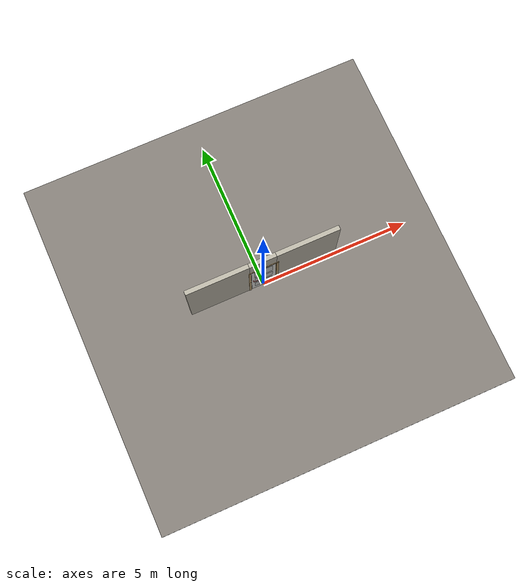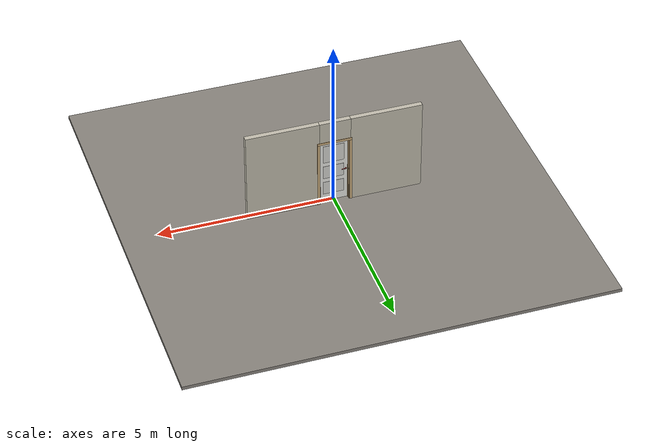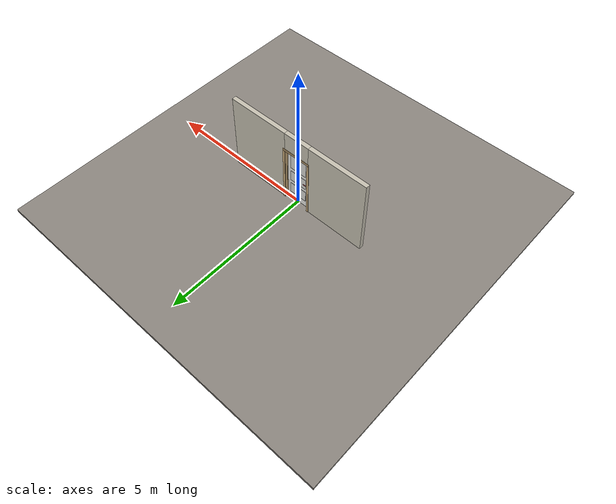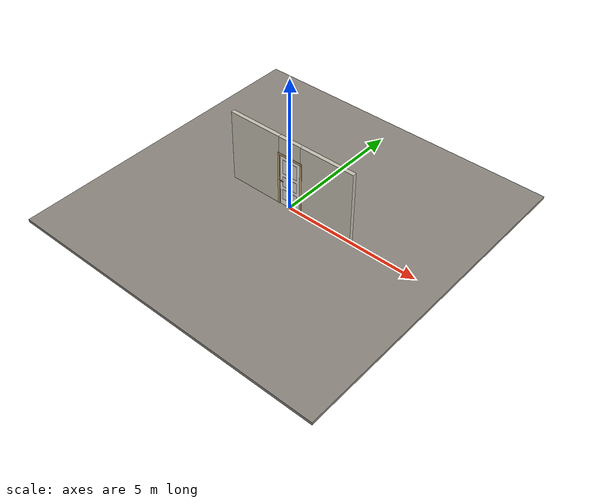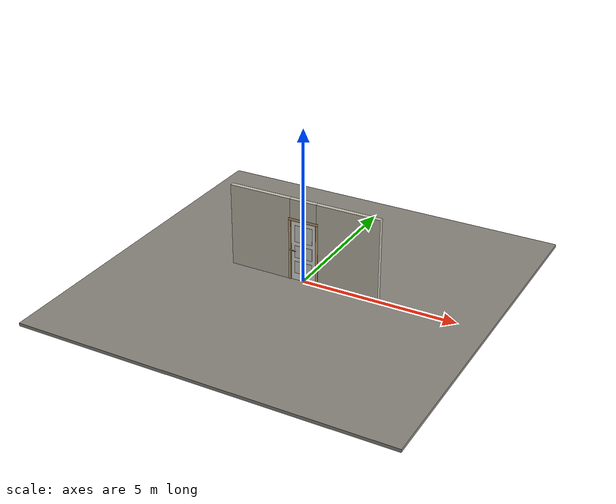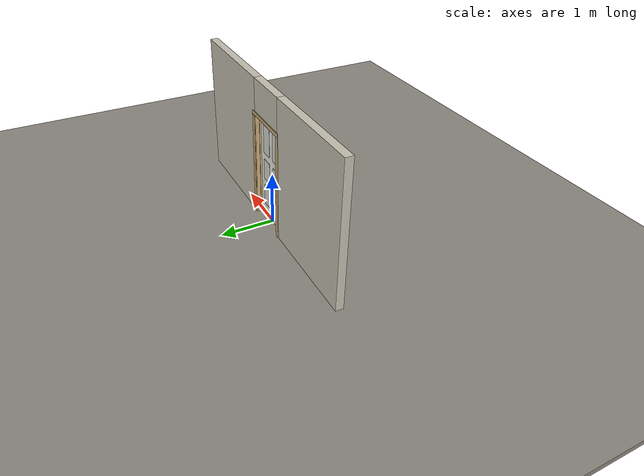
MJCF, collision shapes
<?xml version="1.0" ?>
<mujoco model="db0317_swing_single_full">
  <compiler angle="radian" meshdir="../../hardware" texturedir="../../textures" autolimits="true" inertiafromgeom="false"/>
  <option timestep="0.002" integrator="implicitfast" cone="elliptic" impratio="10" noslip_iterations="3">
    <flag multiccd="enable"/>
  </option>
  <size memory="16M"/>
  <default>
    <geom condim="4" solref="0.005 1" solimp="0.95 0.99 0.001"/>
    <joint solreflimit="0.005 1" solimplimit="0.95 0.99 0.001"/>
    <tendon solreflimit="0.005 1"/>
    <equality solref="0.002 1"/>
  </default>
  <visual>
    <headlight ambient="0.4 0.4 0.4" diffuse="0.7 0.7 0.7" specular="0.2 0.2 0.2"/>
    <quality shadowsize="4096"/>
    <map znear="0.01" zfar="60"/>
  </visual>
  <asset>
    <mesh name="hinge_c20a5829de" file="hinge_c20a5829de.obj"/>
    <mesh name="hinge_jamb_20499e6581" file="hinge_jamb_20499e6581.obj"/>
    <mesh name="lever_9f02b544cf" file="lever_9f02b544cf.obj"/>
    <material name="mat_floor" rgba="0.55 0.53 0.5 1" specular="0.2" shininess="0.15" reflectance="0"/>
    <material name="mat_wall" rgba="0.78 0.76 0.7 1" specular="0.2" shininess="0.1" reflectance="0"/>
    <material name="mat_hinge" rgba="0.55 0.56 0.58 1" specular="0.8" shininess="0.55" reflectance="0.4"/>
    <material name="mat_leaf" rgba="0.93 0.93 0.91 1" specular="0.2" shininess="0.59" reflectance="0"/>
    <material name="mat_leaf_panel" rgba="0.856 0.856 0.837 1" specular="0.2" shininess="0.59" reflectance="0"/>
    <material name="mat_op_brass_antique" rgba="0.55 0.42 0.22 1" specular="0.74" shininess="0.45" reflectance="0.36"/>
    <material name="mat_trim" rgba="0.85 0.66 0.3 1" specular="0.8" shininess="0.75" reflectance="0.4"/>
    <material name="mat_bolt" rgba="0.85 0.66 0.3 1" specular="0.8" shininess="0.75" reflectance="0.4"/>
    <material name="mat_frame" rgba="0.82 0.7 0.5 1" specular="0.2" shininess="0.45" reflectance="0"/>
    <texture name="skybox" type="skybox" builtin="gradient" rgb1="0.6 0.7 0.85" rgb2="0.9 0.92 0.95" width="256" height="256"/>
  </asset>
  <worldbody>
    <light name="sun" pos="1.5 -2.5 4" dir="-0.3 0.5 -0.8" directional="true" diffuse="0.8 0.8 0.8" specular="0.3 0.3 0.3" castshadow="true"/>
    <light name="fill" pos="-1.5 2.5 3" dir="0.3 -0.5 -0.7" directional="true" diffuse="0.35 0.35 0.4" castshadow="false"/>
    <camera name="robot_view" pos="0 -2.450125 1.698475" xyaxes="1 0 0 0 0.26963 0.962964" fovy="52"/>
    <camera name="far_view" pos="0 2.546125 1.698475" xyaxes="-1 0 0 0 -0.26963 0.962964" fovy="52"/>
    <camera name="iso" pos="-1.898575 -2.050425 2.098175" xyaxes="0.741536 -0.670913 0 0.242917 0.268487 0.932151" fovy="46"/>
    <camera name="detail_handle" pos="-0.066 -0.8725 1.296" xyaxes="0.97561 0.219512 0 -0.070934 0.315262 0.94635" fovy="38"/>
    <geom name="floor" type="box" size="6 6 0.05" pos="0 0 -0.05" material="mat_floor" group="0" contype="1" conaffinity="1" friction="0.8 0.005 0.0001" density="2400"/>
    <geom name="wall_left" type="box" size="1.0205 0.0725 1.35" pos="-1.4795 0.048 1.35" material="mat_wall" group="0" contype="1" conaffinity="1" friction="0.6 0.005 0.0001" density="800"/>
    <geom name="wall_right" type="box" size="1.0355 0.0725 1.35" pos="1.4645 0.048 1.35" material="mat_wall" group="0" contype="1" conaffinity="1" friction="0.6 0.005 0.0001" density="800"/>
    <geom name="wall_header" type="box" size="0.444 0.0725 0.3265" pos="-0.015 0.048 2.3735" material="mat_wall" group="0" contype="1" conaffinity="1" friction="0.6 0.005 0.0001" density="800"/>
    <geom name="hinge_0_jamb" type="mesh" mesh="hinge_jamb_20499e6581" pos="0.407 -0.0245 0.259" quat="0 0 1 0" material="mat_hinge" group="1" contype="0" conaffinity="0" density="7850"/>
    <geom name="hinge_1_jamb" type="mesh" mesh="hinge_jamb_20499e6581" pos="0.407 -0.0245 0.9963" quat="0 0 1 0" material="mat_hinge" group="1" contype="0" conaffinity="0" density="7850"/>
    <geom name="hinge_2_jamb" type="mesh" mesh="hinge_jamb_20499e6581" pos="0.407 -0.0245 1.8036" quat="0 0 1 0" material="mat_hinge" group="1" contype="0" conaffinity="0" density="7850"/>
    <geom name="jamb_hinge" type="box" size="0.0095 0.0725 0.999" pos="0.4195 0.048 0.999" material="mat_frame" group="0" contype="1" conaffinity="1" friction="0.6 0.005 0.0001" density="400"/>
    <geom name="strike_1016_wall_n" type="box" size="0.0245 0.056325 0.0167" pos="-0.4345 0.064175 1.016" material="mat_frame" group="0" contype="1" conaffinity="1" friction="0.6 0.005 0.0001" density="400"/>
    <geom name="strike_1016_wall_p" type="box" size="0.0245 0.008 0.0167" pos="-0.4345 -0.01585 1.016" material="mat_frame" group="0" contype="1" conaffinity="1" friction="0.6 0.005 0.0001" density="400"/>
    <geom name="strike_1016_ramp" type="box" size="0.0245 0.01649 0.0167" pos="-0.439136 -0.028673 1.016" quat="0.977148 0 0 -0.212558" material="mat_frame" group="0" contype="1" conaffinity="1" friction="0.12 0.005 0.0001" density="400"/>
    <geom name="strike_1016_back" type="box" size="0.01615 0.00785 0.0167" pos="-0.44285 0 1.016" material="mat_frame" group="0" contype="1" conaffinity="1" friction="0.6 0.005 0.0001" density="400"/>
    <geom name="jamb_strike_0" type="box" size="0.0245 0.0725 0.49965" pos="-0.4345 0.048 0.49965" material="mat_frame" group="0" contype="1" conaffinity="1" friction="0.6 0.005 0.0001" density="400"/>
    <geom name="jamb_strike_1" type="box" size="0.0245 0.0725 0.48265" pos="-0.4345 0.048 1.51535" material="mat_frame" group="0" contype="1" conaffinity="1" friction="0.6 0.005 0.0001" density="400"/>
    <geom name="jamb_head" type="box" size="0.444 0.0725 0.0095" pos="-0.015 0.048 2.0075" material="mat_frame" group="0" contype="1" conaffinity="1" friction="0.6 0.005 0.0001" density="400"/>
    <geom name="head_stud" type="box" size="0.444 0.0725 0.015" pos="-0.015 0.048 2.032" material="mat_wall" group="0" contype="1" conaffinity="1" friction="0.6 0.005 0.0001" density="500"/>
    <geom name="stop_hinge" type="box" size="0.0055 0.016 0.999" pos="0.4045 0.034 0.999" material="mat_frame" group="0" contype="1" conaffinity="1" friction="0.6 0.005 0.0001" density="400"/>
    <geom name="stop_strike" type="box" size="0.0055 0.016 0.999" pos="-0.4045 0.034 0.999" material="mat_frame" group="0" contype="1" conaffinity="1" friction="0.6 0.005 0.0001" density="400"/>
    <geom name="stop_head" type="box" size="0.41 0.016 0.0055" pos="0 0.034 1.9925" material="mat_frame" group="0" contype="1" conaffinity="1" friction="0.6 0.005 0.0001" density="400"/>
    <geom name="casing_l_n" type="box" size="0.035 0.008 1.0085" pos="-0.459 -0.0325 0.999" material="mat_frame" group="2" contype="0" conaffinity="0" density="400"/>
    <geom name="casing_r_n" type="box" size="0.035 0.008 1.0085" pos="0.459 -0.0325 0.999" material="mat_frame" group="2" contype="0" conaffinity="0" density="400"/>
    <geom name="casing_h_n" type="box" size="0.494 0.008 0.035" pos="0 -0.0325 2.047" material="mat_frame" group="2" contype="0" conaffinity="0" density="400"/>
    <geom name="casing_l_p" type="box" size="0.035 0.008 1.0085" pos="-0.459 0.1285 0.999" material="mat_frame" group="2" contype="0" conaffinity="0" density="400"/>
    <geom name="casing_r_p" type="box" size="0.035 0.008 1.0085" pos="0.459 0.1285 0.999" material="mat_frame" group="2" contype="0" conaffinity="0" density="400"/>
    <geom name="casing_h_p" type="box" size="0.494 0.008 0.035" pos="0 0.1285 2.047" material="mat_frame" group="2" contype="0" conaffinity="0" density="400"/>
    <site name="approach_point" pos="0 -1.5 0" quat="1 0 0 0" size="0.05" rgba="0.2 0.9 0.2 0.5" group="4"/>
    <site name="goal_point" pos="0 1.5 0" quat="1 0 0 0" size="0.05" rgba="0.2 0.9 0.2 0.5" group="4"/>
    <site name="door_plane_center" pos="0 0 0.999" quat="1 0 0 0" size="0.02" rgba="0.2 0.9 0.2 0.5" group="4"/>
    <body name="leaf_riser" pos="0.41 0 0">
      <inertial pos="-0.003 -0.0245 0.055" mass="0.174012" quat="0 0.707107 0 0.707107" diaginertia="0.000017053 0.00002732 0.00002732"/>
      <joint name="leaf_rise" type="slide" axis="0 0 1" limited="true" range="0 0.0176" damping="1" armature="0.5"/>
      <geom name="leaf_riser_marker" type="cylinder" size="0.014 0.018" pos="-0.003 -0.0245 0.055" material="mat_hinge" group="1" contype="0" conaffinity="0" density="7850"/>
      <body name="leaf" pos="0 0 0">
        <inertial pos="-0.390419 -0.000797 0.997486" mass="12.306835" quat="0.500902 -0.498303 0.501668 0.49912" diaginertia="0.741471873 4.039096764 4.777722851"/>
        <joint name="leaf_hinge" type="hinge" axis="0 0 1" pos="-0.003 -0.0245 0" limited="true" range="0 1.919862" damping="0.206618" frictionloss="0.199313" armature="0.02"/>
        <geom name="leaf_slab" type="box" size="0.4065 0.0175 0.9873" pos="-0.4095 0 0.9963" material="mat_leaf" group="0" contype="1" conaffinity="1" friction="0.35 0.005 0.0001" density="1"/>
        <geom name="leaf_panel_0_n" type="box" size="0.11575 0.003 0.2018" pos="-0.22875 -0.0205 0.448006" material="mat_leaf_panel" group="1" contype="0" conaffinity="0" density="1"/>
        <geom name="leaf_panel_0_p" type="box" size="0.11575 0.003 0.2018" pos="-0.22875 0.0205 0.448006" material="mat_leaf_panel" group="1" contype="0" conaffinity="0" density="1"/>
        <geom name="leaf_panel_1_n" type="box" size="0.11575 0.003 0.2018" pos="-0.59025 -0.0205 0.448006" material="mat_leaf_panel" group="1" contype="0" conaffinity="0" density="1"/>
        <geom name="leaf_panel_1_p" type="box" size="0.11575 0.003 0.2018" pos="-0.59025 0.0205 0.448006" material="mat_leaf_panel" group="1" contype="0" conaffinity="0" density="1"/>
        <geom name="leaf_panel_2_n" type="box" size="0.11575 0.003 0.2018" pos="-0.22875 -0.0205 0.981605" material="mat_leaf_panel" group="1" contype="0" conaffinity="0" density="1"/>
        <geom name="leaf_panel_2_p" type="box" size="0.11575 0.003 0.2018" pos="-0.22875 0.0205 0.981605" material="mat_leaf_panel" group="1" contype="0" conaffinity="0" density="1"/>
        <geom name="leaf_panel_3_n" type="box" size="0.11575 0.003 0.2018" pos="-0.59025 -0.0205 0.981605" material="mat_leaf_panel" group="1" contype="0" conaffinity="0" density="1"/>
        <geom name="leaf_panel_3_p" type="box" size="0.11575 0.003 0.2018" pos="-0.59025 0.0205 0.981605" material="mat_leaf_panel" group="1" contype="0" conaffinity="0" density="1"/>
        <geom name="leaf_panel_4_n" type="box" size="0.11575 0.003 0.275733" pos="-0.22875 -0.0205 1.589137" material="mat_leaf_panel" group="1" contype="0" conaffinity="0" density="1"/>
        <geom name="leaf_panel_4_p" type="box" size="0.11575 0.003 0.275733" pos="-0.22875 0.0205 1.589137" material="mat_leaf_panel" group="1" contype="0" conaffinity="0" density="1"/>
        <geom name="leaf_panel_5_n" type="box" size="0.11575 0.003 0.275733" pos="-0.59025 -0.0205 1.589137" material="mat_leaf_panel" group="1" contype="0" conaffinity="0" density="1"/>
        <geom name="leaf_panel_5_p" type="box" size="0.11575 0.003 0.275733" pos="-0.59025 0.0205 1.589137" material="mat_leaf_panel" group="1" contype="0" conaffinity="0" density="1"/>
        <geom name="hinge_0" type="mesh" mesh="hinge_c20a5829de" pos="-0.003 -0.0245 0.259" quat="0 0 1 0" material="mat_hinge" group="1" contype="0" conaffinity="0" density="7850"/>
        <geom name="hinge_1" type="mesh" mesh="hinge_c20a5829de" pos="-0.003 -0.0245 0.9963" quat="0 0 1 0" material="mat_hinge" group="1" contype="0" conaffinity="0" density="7850"/>
        <geom name="hinge_2" type="mesh" mesh="hinge_c20a5829de" pos="-0.003 -0.0245 1.8036" quat="0 0 1 0" material="mat_hinge" group="1" contype="0" conaffinity="0" density="7850"/>
        <geom name="leaf_latch_bolt_faceplate" type="box" size="0.0006 0.01235 0.0267" pos="-0.8154 0 1.016" material="mat_bolt" group="1" contype="0" conaffinity="0" density="8500"/>
        <site name="leaf_edge_mid" pos="-0.816 0 0.9873" quat="1 0 0 0" size="0.02" rgba="0.2 0.9 0.2 0.5" group="4"/>
        <body name="leaf_handle" pos="-0.756 0 1.016">
          <inertial pos="0.028779 0 0" mass="0.970196" quat="0.707107 0 0 -0.707107" diaginertia="0.001765339 0.003138972 0.004726252"/>
          <joint name="leaf_handle_hinge" type="hinge" axis="0 1 0" limited="true" range="0 0.96" damping="0.20055" frictionloss="0.046" stiffness="0.8" springref="-0.577217" armature="0.01"/>
          <geom name="leaf_handle_spindle" type="cylinder" size="0.006 0.0255" pos="0 0 0" quat="0.707107 -0.707107 0 0" material="mat_op_brass_antique" group="1" contype="0" conaffinity="0" density="7850"/>
          <geom name="leaf_handle_lever_n" type="mesh" mesh="lever_9f02b544cf" pos="0 -0.0175 0" quat="0 0 -0.707107 0.707107" material="mat_op_brass_antique" group="1" contype="0" conaffinity="0" density="3000"/>
          <geom name="leaf_handle_lever_col_n" type="capsule" size="0.0095 0.053" pos="0.0625 -0.0725 0" quat="0.707107 0 0.707107 0" material="mat_op_brass_antique" group="3" contype="1" conaffinity="1" rgba="0.8 0.3 0.3 0.25" friction="0.7 0.01 0.0001" density="3000"/>
          <geom name="leaf_handle_hub_col_n" type="cylinder" size="0.012 0.022" pos="0 -0.0475 0" quat="0.707107 -0.707107 0 0" material="mat_op_brass_antique" group="3" contype="1" conaffinity="1" rgba="0.8 0.3 0.3 0.25" friction="0.6 0.005 0.0001" density="3000"/>
          <geom name="leaf_handle_lever_p" type="mesh" mesh="lever_9f02b544cf" pos="0 0.0175 0" quat="0 0 0.707107 0.707107" material="mat_op_brass_antique" group="1" contype="0" conaffinity="0" density="3000"/>
          <geom name="leaf_handle_lever_col_p" type="capsule" size="0.0095 0.053" pos="0.0625 0.0725 0" quat="0.707107 0 0.707107 0" material="mat_op_brass_antique" group="3" contype="1" conaffinity="1" rgba="0.8 0.3 0.3 0.25" friction="0.7 0.01 0.0001" density="3000"/>
          <geom name="leaf_handle_hub_col_p" type="cylinder" size="0.012 0.022" pos="0 0.0475 0" quat="0.707107 -0.707107 0 0" material="mat_op_brass_antique" group="3" contype="1" conaffinity="1" rgba="0.8 0.3 0.3 0.25" friction="0.6 0.005 0.0001" density="3000"/>
          <site name="leaf_handle_grip_n" pos="0.1 -0.0725 0" quat="1 0 0 0" size="0.012" rgba="0.2 0.9 0.2 0.5" group="4"/>
          <site name="leaf_handle_grip_p" pos="0.1 0.0725 0" quat="1 0 0 0" size="0.012" rgba="0.2 0.9 0.2 0.5" group="4"/>
        </body>
        <body name="leaf_latch_bolt" pos="-0.816 0 1.016">
          <inertial pos="0.00865 0 0" mass="0.041419" quat="0.92388 0.382683 0 0" diaginertia="0.000000798 0.000005598 0.000005598"/>
          <joint name="leaf_latch_bolt_slide" type="slide" axis="1 0 0" limited="true" range="0 0.0127" damping="2" frictionloss="0.3" stiffness="300" springref="-0.008333" armature="0.1"/>
          <geom name="leaf_latch_bolt_capsule" type="capsule" size="0.00635 0.015" pos="0.00865 0 0" quat="0.707107 0 -0.707107 0" material="mat_bolt" group="0" contype="1" conaffinity="1" friction="0.2 0.005 0.0001" density="8500"/>
        </body>
      </body>
    </body>
  </worldbody>
  <tendon>
    <fixed name="leaf_latch_bolt_coupling" limited="true" range="0 10">
      <joint joint="leaf_latch_bolt_slide" coef="1"/>
      <joint joint="leaf_handle_hinge" coef="-0.016711"/>
    </fixed>
  </tendon>
  <equality>
    <joint name="leaf_rise_couple" joint1="leaf_rise" joint2="leaf_hinge" polycoef="0 0.005093 0 0 0" active="true"/>
  </equality>
  <sensor>
    <jointpos name="leaf_hinge_pos" joint="leaf_hinge"/>
    <jointvel name="leaf_hinge_vel" joint="leaf_hinge"/>
    <jointpos name="leaf_handle_hinge_pos" joint="leaf_handle_hinge"/>
    <jointvel name="leaf_handle_hinge_vel" joint="leaf_handle_hinge"/>
    <jointpos name="leaf_latch_bolt_slide_pos" joint="leaf_latch_bolt_slide"/>
    <jointvel name="leaf_latch_bolt_slide_vel" joint="leaf_latch_bolt_slide"/>
  </sensor>
</mujoco>
